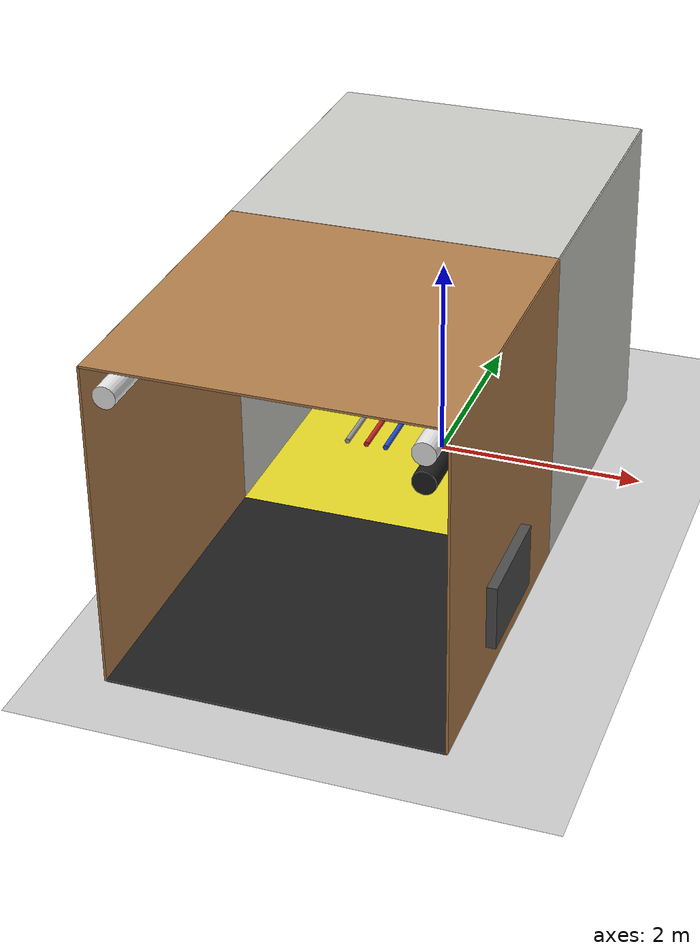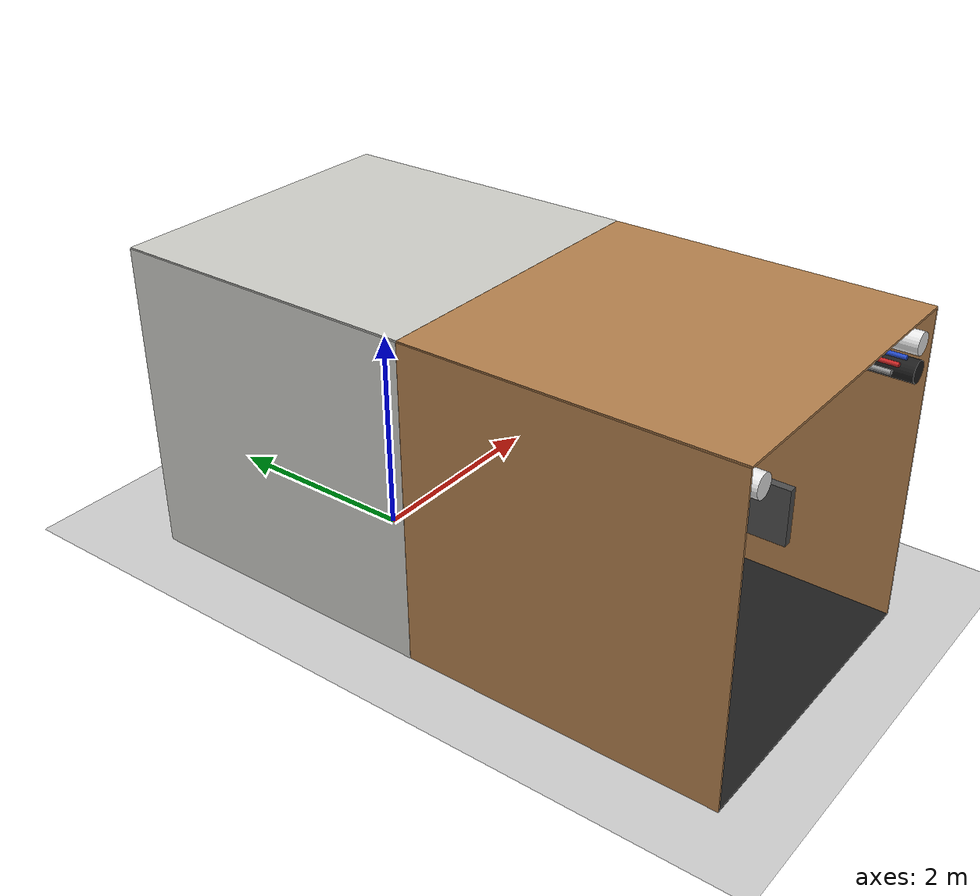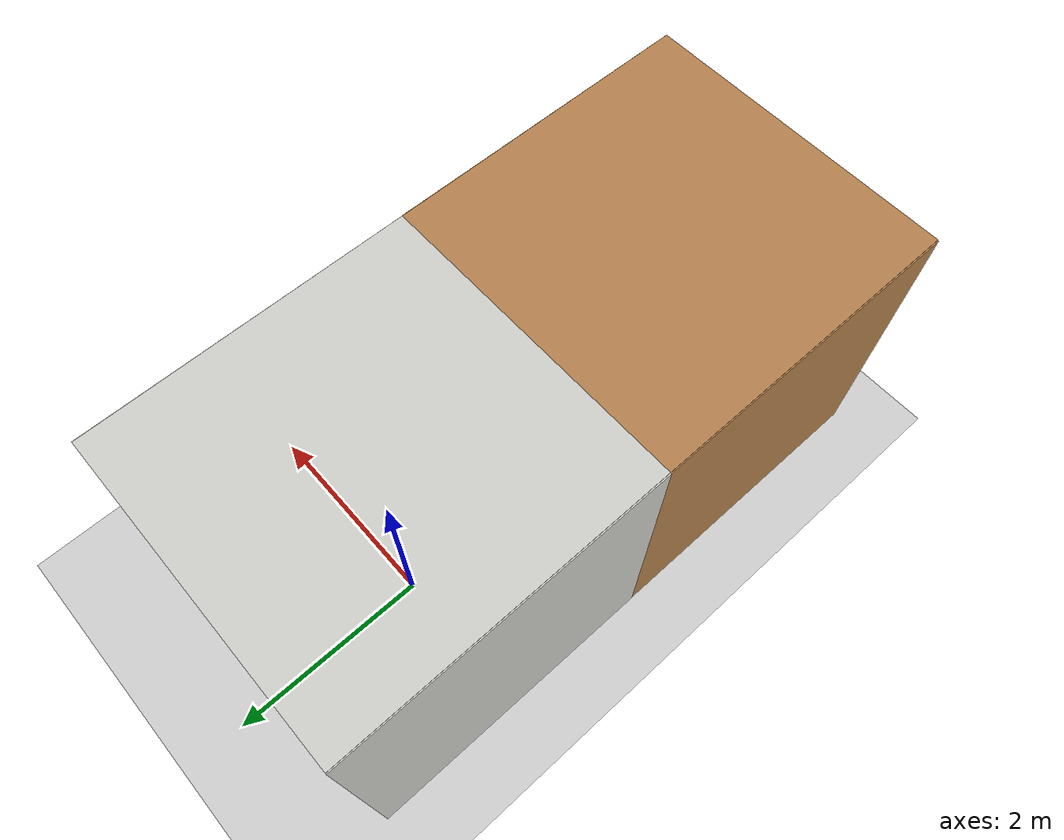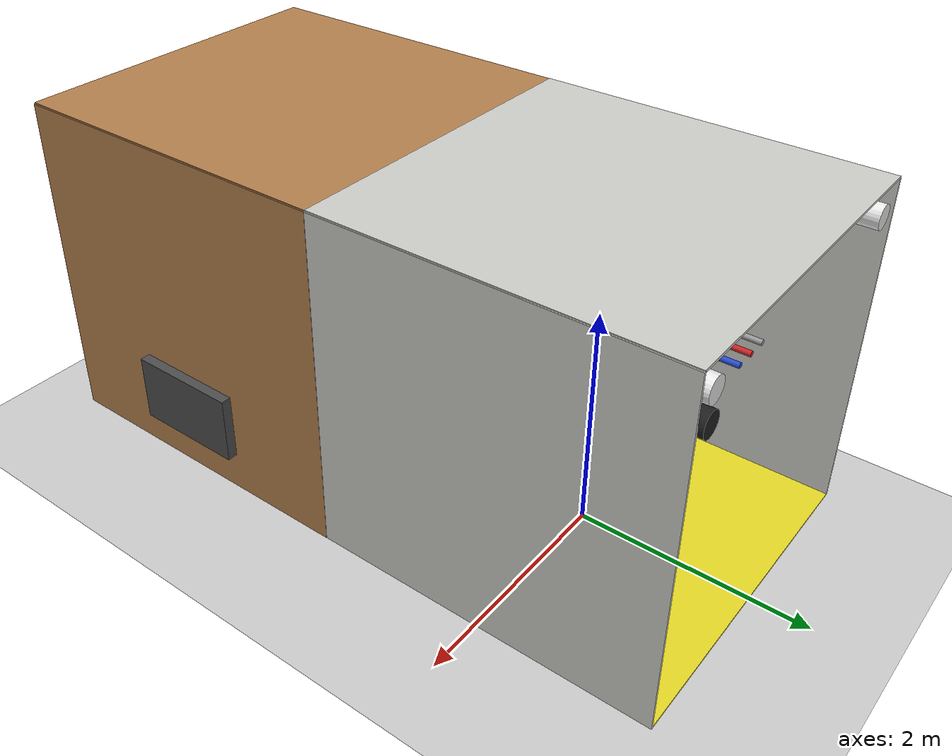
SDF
<sdf version="1.6">
 <world name="default">
  <model name="ground_plane">
   <static>1</static>
   <link name="link">
    <collision name="collision">
     <geometry><plane><normal>0 0 1</normal><size>200 200</size></plane></geometry>
     <surface><friction><ode><mu>100</mu><mu2>50</mu2></ode></friction></surface>
    </collision>
    <visual name="visual">
     <cast_shadows>0</cast_shadows>
     <geometry><plane><normal>0 0 1</normal><size>200 200</size></plane></geometry>
     <material>
      <script><uri>file://media/materials/scripts/gazebo.material</uri><name>Gazebo/Grey</name></script>
     </material>
    </visual>
   </link>
  </model>
  <model name="white_pipe_left_0_0_0_0">
   <static>1</static>
   <pose>0.0 0.0 2.76 0.0 0.0 0.0</pose>
   <link name="link_0">
    <visual name="visual">
     <pose>-1.3 0 0 1.57 0 0</pose>
     <geometry><cylinder><radius>0.1</radius><length>3</length></cylinder></geometry>
     <material>
      <script><uri>file://media/materials/scripts/gazebo.material</uri><name>Gazebo/White</name></script>
     </material>
    </visual>
    <collision name="collision">
     <pose>-1.3 0 0 1.57 0 0</pose>
     <geometry><cylinder><radius>0.1</radius><length>3</length></cylinder></geometry>
    </collision>
   </link>
  </model>
  <model name="white_pipe_right_0_0_0_0">
   <static>1</static>
   <pose>0.0 0.0 2.76 0.0 0.0 0.0</pose>
   <link name="link_0">
    <visual name="visual">
     <pose>1.3 0 0 1.57 0 0</pose>
     <geometry><cylinder><radius>0.1</radius><length>3</length></cylinder></geometry>
     <material>
      <script><uri>file://media/materials/scripts/gazebo.material</uri><name>Gazebo/White</name></script>
     </material>
    </visual>
    <collision name="collision">
     <pose>1.3 0 0 1.57 0 0</pose>
     <geometry><cylinder><radius>0.1</radius><length>3</length></cylinder></geometry>
    </collision>
   </link>
  </model>
  <model name="black_pipe_right_0_0_0_0">
   <static>1</static>
   <pose>0.0 0.0 2.76 0.0 0.0 0.0</pose>
   <link name="link_0">
    <visual name="visual">
     <pose>1.3 0 -0.25 1.57 0 0</pose>
     <geometry><cylinder><radius>0.1</radius><length>3</length></cylinder></geometry>
     <material>
      <script><uri>file://media/materials/scripts/gazebo.material</uri><name>Gazebo/Black</name></script>
     </material>
    </visual>
    <collision name="collision">
     <pose>1.3 0 -0.25 1.57 0 0</pose>
     <geometry><cylinder><radius>0.1</radius><length>3</length></cylinder></geometry>
    </collision>
   </link>
  </model>
  <model name="grey_pipe_right_0_0_0_0">
   <static>1</static>
   <pose>0.0 0.0 2.76 0.0 0.0 0.0</pose>
   <link name="link_0">
    <visual name="visual">
     <pose>0.7 0 0 1.57 0 0</pose>
     <geometry><cylinder><radius>0.02</radius><length>3</length></cylinder></geometry>
     <material>
      <script><uri>file://media/materials/scripts/gazebo.material</uri><name>Gazebo/Grey</name></script>
     </material>
    </visual>
    <collision name="collision">
     <pose>0.7 0 0 1.57 0 0</pose>
     <geometry><cylinder><radius>0.02</radius><length>3</length></cylinder></geometry>
    </collision>
   </link>
  </model>
  <model name="red_pipe_right_0_0_0_0">
   <static>1</static>
   <pose>0.0 0.0 2.76 0.0 0.0 0.0</pose>
   <link name="link_0">
    <visual name="visual">
     <pose>0.85 0 0 1.57 0 0</pose>
     <geometry><cylinder><radius>0.02</radius><length>3</length></cylinder></geometry>
     <material>
      <script><uri>file://media/materials/scripts/gazebo.material</uri><name>Gazebo/Red</name></script>
     </material>
    </visual>
    <collision name="collision">
     <pose>0.85 0 0 1.57 0 0</pose>
     <geometry><cylinder><radius>0.02</radius><length>3</length></cylinder></geometry>
    </collision>
   </link>
  </model>
  <model name="blue_pipe_right_0_0_0_0">
   <static>1</static>
   <pose>0.0 0.0 2.76 0.0 0.0 0.0</pose>
   <link name="link_0">
    <visual name="visual">
     <pose>1 0 0 1.57 0 0</pose>
     <geometry><cylinder><radius>0.02</radius><length>3</length></cylinder></geometry>
     <material>
      <script><uri>file://media/materials/scripts/gazebo.material</uri><name>Gazebo/Blue</name></script>
     </material>
    </visual>
    <collision name="collision">
     <pose>1 0 0 1.57 0 0</pose>
     <geometry><cylinder><radius>0.02</radius><length>3</length></cylinder></geometry>
    </collision>
   </link>
  </model>
  <model name="wall_right_0_0_0_0">
   <static>1</static>
   <pose>1.5 0.0 1.5 0.0 0.0 1.57</pose>
   <link name="link">
    <collision name="collision"><geometry><box><size>3 0.02 3</size></box></geometry></collision>
    <visual name="visual">
     <material>
      <script><name>Gazebo/CeilingTiled</name><uri>file://media/materials/scripts/gazebo.material</uri></script>
      <ambient>1 1 1 1</ambient>
     </material>
     <geometry><box><size>3 0.02 3</size></box></geometry>
    </visual>
   </link>
  </model>
  <model name="wall_left_0_0_0_0">
   <static>1</static>
   <pose>-1.5 0.0 1.5 0.0 0.0 1.57</pose>
   <link name="link">
    <collision name="collision"><geometry><box><size>3 0.02 3</size></box></geometry></collision>
    <visual name="visual">
     <material>
      <script><name>Gazebo/CeilingTiled</name><uri>file://media/materials/scripts/gazebo.material</uri></script>
      <ambient>1 1 1 1</ambient>
     </material>
     <geometry><box><size>3 0.02 3</size></box></geometry>
    </visual>
   </link>
  </model>
  <model name="wall_top_0_0_0_0">
   <static>1</static>
   <pose>0.0 0.0 3.0 1.57 0.0 0.0</pose>
   <link name="link">
    <collision name="collision"><geometry><box><size>3 0.02 3</size></box></geometry></collision>
    <visual name="visual">
     <material>
      <script><name>Gazebo/CeilingTiled</name><uri>file://media/materials/scripts/gazebo.material</uri></script>
      <ambient>1 1 1 1</ambient>
     </material>
     <geometry><box><size>3 0.02 3</size></box></geometry>
    </visual>
   </link>
  </model>
  <model name="wall_bottom_0_0_0_0">
   <static>1</static>
   <link name="link">
    <collision name="collision"><geometry><box><size>3 3 0.02</size></box></geometry></collision>
    <visual name="visual">
     <material>
      <script><name>Gazebo/Yellow</name><uri>file://media/materials/scripts/gazebo.material</uri></script>
     </material>
     <geometry><box><size>3 3 0.02</size></box></geometry>
    </visual>
   </link>
  </model>
  <model name="wall_right_0_-1_0_1">
   <static>1</static>
   <pose>1.5 -3.0 1.5 0.0 0.0 1.57</pose>
   <link name="link">
    <collision name="collision"><geometry><box><size>3 0.02 3</size></box></geometry></collision>
    <visual name="visual">
     <material>
      <script><name>Gazebo/Wood</name><uri>file://media/materials/scripts/gazebo.material</uri></script>
     </material>
     <geometry><box><size>3 0.02 3</size></box></geometry>
    </visual>
   </link>
  </model>
  <model name="wall_left_0_-1_0_1">
   <static>1</static>
   <pose>-1.5 -3.0 1.5 0.0 0.0 1.57</pose>
   <link name="link">
    <collision name="collision"><geometry><box><size>3 0.02 3</size></box></geometry></collision>
    <visual name="visual">
     <material>
      <script><name>Gazebo/Wood</name><uri>file://media/materials/scripts/gazebo.material</uri></script>
     </material>
     <geometry><box><size>3 0.02 3</size></box></geometry>
    </visual>
   </link>
  </model>
  <model name="wall_top_0_-1_0_1">
   <static>1</static>
   <pose>0.0 -3.0 3.0 1.57 0.0 0.0</pose>
   <link name="link">
    <collision name="collision"><geometry><box><size>3 0.02 3</size></box></geometry></collision>
    <visual name="visual">
     <material>
      <script><name>Gazebo/Wood</name><uri>file://media/materials/scripts/gazebo.material</uri></script>
     </material>
     <geometry><box><size>3 0.02 3</size></box></geometry>
    </visual>
   </link>
  </model>
  <model name="white_pipe_left_0_-1_0_1">
   <static>1</static>
   <pose>0.0 -3.0 2.76 0.0 0.0 0.0</pose>
   <link name="link_0">
    <visual name="visual">
     <pose>-1.3 0 0 1.57 0 0</pose>
     <geometry><cylinder><radius>0.1</radius><length>3</length></cylinder></geometry>
     <material>
      <script><uri>file://media/materials/scripts/gazebo.material</uri><name>Gazebo/White</name></script>
     </material>
    </visual>
    <collision name="collision">
     <pose>-1.3 0 0 1.57 0 0</pose>
     <geometry><cylinder><radius>0.1</radius><length>3</length></cylinder></geometry>
    </collision>
   </link>
  </model>
  <model name="white_pipe_right_0_-1_0_1">
   <static>1</static>
   <pose>0.0 -3.0 2.76 0.0 0.0 0.0</pose>
   <link name="link_0">
    <visual name="visual">
     <pose>1.3 0 0 1.57 0 0</pose>
     <geometry><cylinder><radius>0.1</radius><length>3</length></cylinder></geometry>
     <material>
      <script><uri>file://media/materials/scripts/gazebo.material</uri><name>Gazebo/White</name></script>
     </material>
    </visual>
    <collision name="collision">
     <pose>1.3 0 0 1.57 0 0</pose>
     <geometry><cylinder><radius>0.1</radius><length>3</length></cylinder></geometry>
    </collision>
   </link>
  </model>
  <model name="black_pipe_right_0_-1_0_1">
   <static>1</static>
   <pose>0.0 -3.0 2.76 0.0 0.0 0.0</pose>
   <link name="link_0">
    <visual name="visual">
     <pose>1.3 0 -0.25 1.57 0 0</pose>
     <geometry><cylinder><radius>0.1</radius><length>3</length></cylinder></geometry>
     <material>
      <script><uri>file://media/materials/scripts/gazebo.material</uri><name>Gazebo/Black</name></script>
     </material>
    </visual>
    <collision name="collision">
     <pose>1.3 0 -0.25 1.57 0 0</pose>
     <geometry><cylinder><radius>0.1</radius><length>3</length></cylinder></geometry>
    </collision>
   </link>
  </model>
  <model name="grey_pipe_right_0_-1_0_1">
   <static>1</static>
   <pose>0.0 -3.0 2.76 0.0 0.0 0.0</pose>
   <link name="link_0">
    <visual name="visual">
     <pose>0.7 0 0 1.57 0 0</pose>
     <geometry><cylinder><radius>0.02</radius><length>3</length></cylinder></geometry>
     <material>
      <script><uri>file://media/materials/scripts/gazebo.material</uri><name>Gazebo/Grey</name></script>
     </material>
    </visual>
    <collision name="collision">
     <pose>0.7 0 0 1.57 0 0</pose>
     <geometry><cylinder><radius>0.02</radius><length>3</length></cylinder></geometry>
    </collision>
   </link>
  </model>
  <model name="red_pipe_right_0_-1_0_1">
   <static>1</static>
   <pose>0.0 -3.0 2.76 0.0 0.0 0.0</pose>
   <link name="link_0">
    <visual name="visual">
     <pose>0.85 0 0 1.57 0 0</pose>
     <geometry><cylinder><radius>0.02</radius><length>3</length></cylinder></geometry>
     <material>
      <script><uri>file://media/materials/scripts/gazebo.material</uri><name>Gazebo/Red</name></script>
     </material>
    </visual>
    <collision name="collision">
     <pose>0.85 0 0 1.57 0 0</pose>
     <geometry><cylinder><radius>0.02</radius><length>3</length></cylinder></geometry>
    </collision>
   </link>
  </model>
  <model name="blue_pipe_right_0_-1_0_1">
   <static>1</static>
   <pose>0.0 -3.0 2.76 0.0 0.0 0.0</pose>
   <link name="link_0">
    <visual name="visual">
     <pose>1 0 0 1.57 0 0</pose>
     <geometry><cylinder><radius>0.02</radius><length>3</length></cylinder></geometry>
     <material>
      <script><uri>file://media/materials/scripts/gazebo.material</uri><name>Gazebo/Blue</name></script>
     </material>
    </visual>
    <collision name="collision">
     <pose>1 0 0 1.57 0 0</pose>
     <geometry><cylinder><radius>0.02</radius><length>3</length></cylinder></geometry>
    </collision>
   </link>
  </model>
  <model name="wall_bottom_0_-1_0_1">
   <static>1</static>
   <pose>0.0 -3.0 0.0 0.0 0.0 0.0</pose>
   <link name="link">
    <collision name="collision"><geometry><box><size>3 3 0.02</size></box></geometry></collision>
    <visual name="visual">
     <material>
      <script><name>Gazebo/Black</name><uri>file://media/materials/scripts/gazebo.material</uri></script>
     </material>
     <geometry><box><size>3 3 0.02</size></box></geometry>
    </visual>
   </link>
  </model>
  <model name="panel_0_-1_0_1">
   <static>1</static>
   <pose>1.5 -3.0 0.66 0.0 0.0 0.0</pose>
   <link name="link">
    <collision name="collision"><geometry><box><size>0.2 1 0.6</size></box></geometry></collision>
    <visual name="visual">
     <material>
      <script><name>Gazebo/DarkGrey</name><uri>file://media/materials/scripts/gazebo.material</uri></script>
     </material>
     <geometry><box><size>0.2 1 0.6</size></box></geometry>
    </visual>
   </link>
  </model>
 </world>
</sdf>
